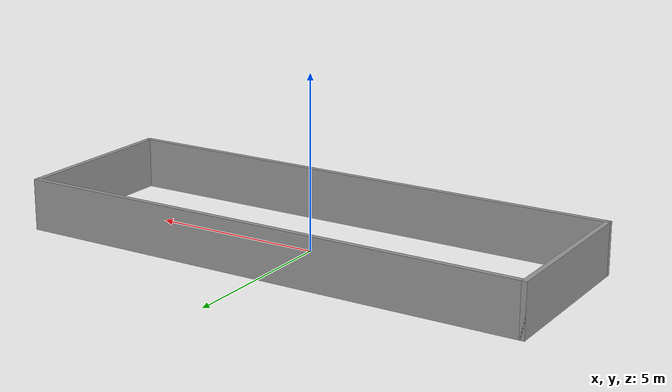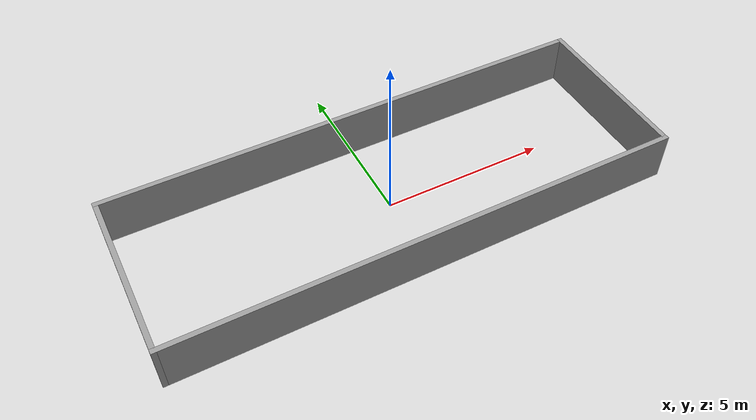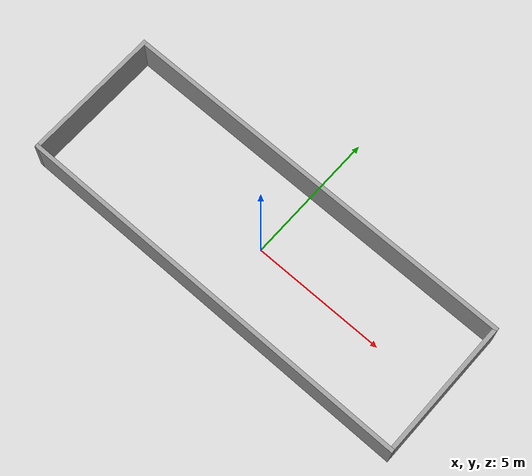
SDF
<?xml version='1.0'?>
<sdf version='1.6'>
  <model name='simple_room__15x5'>
    <pose frame=''>0 0 0 0 0 0</pose>
    <link name='Wall_0'>
      <collision name='Wall_0_Collision'>
        <geometry>
          <box>
            <size>15.25 0.15 1.5</size>
          </box>
        </geometry>
        <pose frame=''>0 0 0.75 0 -0 0</pose>
      </collision>
      <visual name='Wall_0_Visual'>
        <pose frame=''>0 0 0.75 0 -0 0</pose>
        <geometry>
          <box>
            <size>15.25 0.15 1.5</size>
          </box>
        </geometry>
        <material>
          <script>
            <uri>file://media/materials/scripts/gazebo.material</uri>
            <name>Gazebo/Grey</name>
          </script>
          <ambient>1 1 1 1</ambient>
        </material>
        <meta>
          <layer>0</layer>
        </meta>
      </visual>
      <pose frame=''>0 2.55 0 0 -0 0</pose>
    </link>
    <link name='Wall_1'>
      <collision name='Wall_1_Collision'>
        <geometry>
          <box>
            <size>5.25 0.15 1.5</size>
          </box>
        </geometry>
        <pose frame=''>0 0 0.75 0 -0 0</pose>
      </collision>
      <visual name='Wall_1_Visual'>
        <pose frame=''>0 0 0.75 0 -0 0</pose>
        <geometry>
          <box>
            <size>5.25 0.15 1.5</size>
          </box>
        </geometry>
        <material>
          <script>
            <uri>file://media/materials/scripts/gazebo.material</uri>
            <name>Gazebo/Grey</name>
          </script>
          <ambient>1 1 1 1</ambient>
        </material>
        <meta>
          <layer>0</layer>
        </meta>
      </visual>
      <pose frame=''>7.55 0 0 0 -0 -1.5708</pose>
    </link>
    <link name='Wall_2'>
      <collision name='Wall_2_Collision'>
        <geometry>
          <box>
            <size>15.25 0.15 1.5</size>
          </box>
        </geometry>
        <pose frame=''>0 0 0.75 0 -0 0</pose>
      </collision>
      <visual name='Wall_2_Visual'>
        <pose frame=''>0 0 0.75 0 -0 0</pose>
        <geometry>
          <box>
            <size>15.25 0.15 1.5</size>
          </box>
        </geometry>
        <material>
          <script>
            <uri>file://media/materials/scripts/gazebo.material</uri>
            <name>Gazebo/Grey</name>
          </script>
          <ambient>1 1 1 1</ambient>
        </material>
        <meta>
          <layer>0</layer>
        </meta>
      </visual>
      <pose frame=''>0 -2.55 0 0 -0 3.14159</pose>
    </link>
    <link name='Wall_3'>
      <collision name='Wall_3_Collision'>
        <geometry>
          <box>
            <size>5.25 0.15 1.5</size>
          </box>
        </geometry>
        <pose frame=''>0 0 0.75 0 -0 0</pose>
      </collision>
      <visual name='Wall_3_Visual'>
        <pose frame=''>0 0 0.75 0 -0 0</pose>
        <geometry>
          <box>
            <size>5.25 0.15 1.5</size>
          </box>
        </geometry>
        <material>
          <script>
            <uri>file://media/materials/scripts/gazebo.material</uri>
            <name>Gazebo/Grey</name>
          </script>
          <ambient>1 1 1 1</ambient>
        </material>
        <meta>
          <layer>0</layer>
        </meta>
      </visual>
      <pose frame=''>-7.55 0 0 0 -0 1.5708</pose>
    </link>
    <static>1</static>
  </model>
</sdf>
